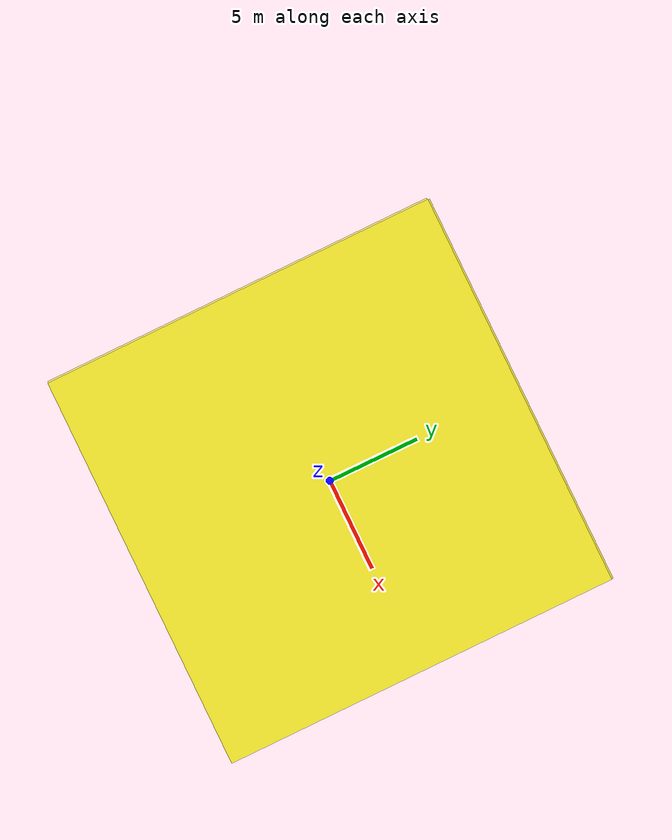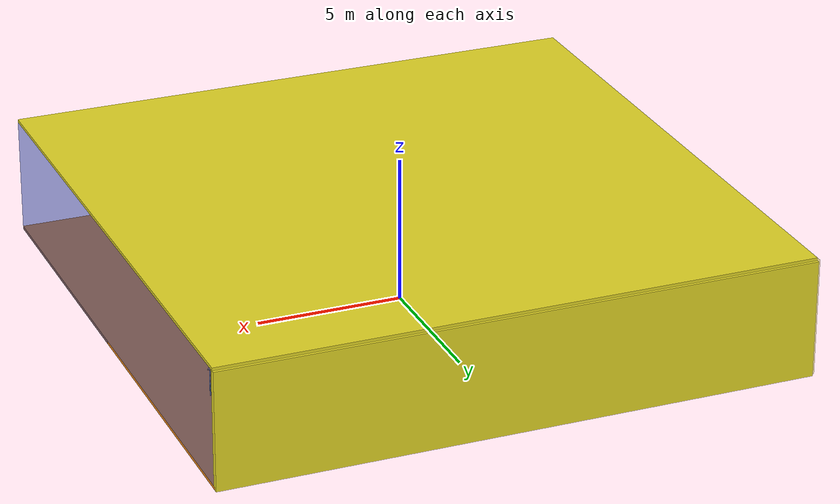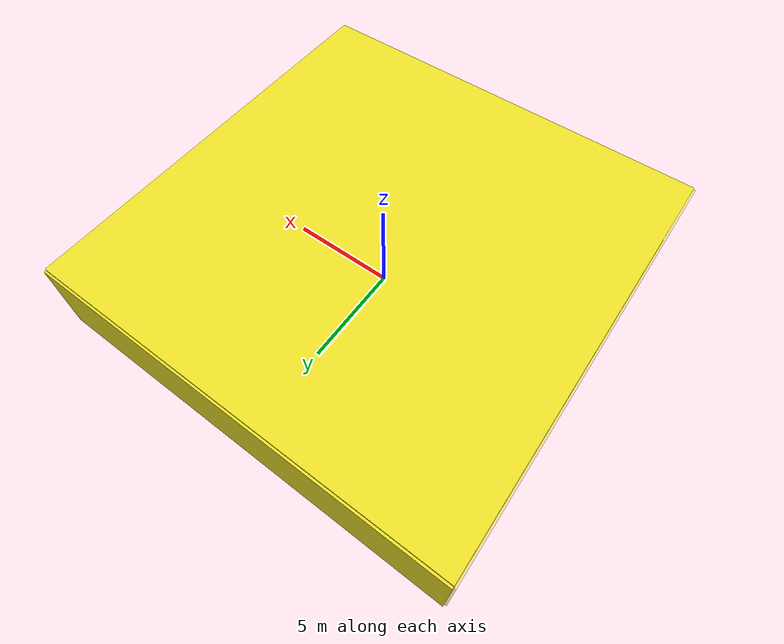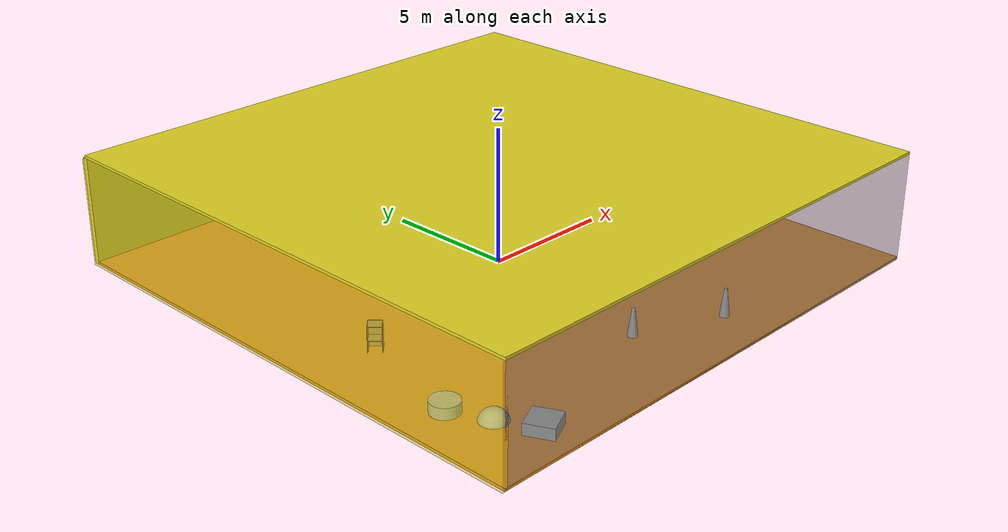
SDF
<sdf version="1.4">
 <world name="default">
  <physics type="ode">
   <max_step_size>0.001</max_step_size>
   <real_time_factor>1</real_time_factor>
   <real_time_update_rate>1000</real_time_update_rate>
   <gravity>0 0 -9.8</gravity>
  </physics>
  <scene><ambient>0.4 0.4 0.4 1</ambient><background>0.7 0.7 0.7 1</background><shadows>1</shadows></scene>
  <model name="Surrounding">
   <static>1</static>
   <link name="Ceiling">
    <collision name="Ceiling_Collision"><geometry><box><size>20 20 0.1</size></box></geometry></collision>
    <visual name="Ceiling_Visual">
     <geometry><box><size>20 20 0.1</size></box></geometry>
     <material>
      <script><uri>file://media/materials/scripts/gazebo.material</uri><name>Gazebo/Yellow</name></script>
     </material>
    </visual>
    <pose>0 0 4.05 0 0 0</pose>
   </link>
   <link name="Wall_South">
    <collision name="Wall_South_Collision">
     <geometry><box><size>20 0 4</size></box></geometry>
     <pose>0 0 2 0 -0 0</pose>
    </collision>
    <visual name="Wall_South_Visual">
     <pose>0 0 2 0 -0 0</pose>
     <geometry><box><size>20 0 4</size></box></geometry>
     <material>
      <script><uri>file://media/materials/scripts/gazebo.material</uri><name>Gazebo/GreyTransparent</name></script>
     </material>
    </visual>
    <velocity_decay><linear>0</linear><angular>0</angular></velocity_decay>
    <pose>0 -10 0 0 -0 0</pose>
   </link>
   <link name="Wall_East">
    <collision name="Wall_21_Collision">
     <geometry><box><size>20 0 4</size></box></geometry>
     <pose>0 0 2 0 -0 0</pose>
    </collision>
    <visual name="Wall_21_Visual">
     <pose>0 0 2 0 -0 0</pose>
     <geometry><box><size>20 0 4</size></box></geometry>
     <material>
      <script><uri>file://media/materials/scripts/gazebo.material</uri><name>Gazebo/BlueTransparent</name></script>
     </material>
    </visual>
    <velocity_decay><linear>0</linear><angular>0</angular></velocity_decay>
    <pose>10 0 0 0 -0 1.5708</pose>
   </link>
   <link name="Wall_North">
    <collision name="Wall_22_Collision">
     <geometry><box><size>20 0.2 4</size></box></geometry>
     <pose>0 0 2 0 -0 0</pose>
    </collision>
    <visual name="Wall_22_Visual">
     <pose>0 0 2 0 -0 0</pose>
     <geometry><box><size>20 0.2 4</size></box></geometry>
     <material>
      <script><uri>file://media/materials/scripts/gazebo.material</uri><name>Gazebo/YellowGlow</name></script>
     </material>
    </visual>
    <velocity_decay><linear>0</linear><angular>0</angular></velocity_decay>
    <pose>0 10 0 0 -0 0</pose>
   </link>
   <link name="Wall_West">
    <collision name="Wall_23_Collision">
     <geometry><box><size>20 0.2 4</size></box></geometry>
     <pose>0 0 2 0 -0 0</pose>
    </collision>
    <visual name="Wall_23_Visual">
     <pose>0 0 2 0 -0 0</pose>
     <geometry><box><size>20 0.2 4</size></box></geometry>
     <material>
      <script>
       <uri>file://media/materials/scripts/gazebo.material</uri>
       <name>Gazebo/YellowTransparent</name>
      </script>
     </material>
    </visual>
    <velocity_decay><linear>0</linear><angular>0</angular></velocity_decay>
    <pose>-10 0 0 0 0 -1.5708</pose>
   </link>
   <link name="Ground_link">
    <collision name="collision">
     <pose>0 0 .05 0 -0 0</pose>
     <geometry><box><size>20 20 0.1</size></box></geometry>
    </collision>
    <visual name="visual">
     <pose>0 0 .05 0 -0 0</pose>
     <geometry><box><size>20 20 0.1</size></box></geometry>
     <material>
      <script><uri>file://media/materials/scripts/gazebo.material</uri><name>Gazebo/Orange</name></script>
     </material>
    </visual>
   </link>
   <static>1</static>
  </model>
  <spherical_coordinates>
   <surface_model>EARTH_WGS84</surface_model>
   <latitude_deg>0</latitude_deg>
   <longitude_deg>0</longitude_deg>
   <elevation>0</elevation>
   <heading_deg>0</heading_deg>
  </spherical_coordinates>
  <light name="lightball_0" type="diffuse">
   <diffuse>0.8 0.8 0.8 1</diffuse>
   <specular>0.2 0.2 0.2 1</specular>
   <attenuation>
    <range>100</range>
    <constant>0.7</constant>
    <linear>0.01</linear>
    <quadratic>0.001</quadratic>
   </attenuation>
   <direction>-0.5 0.1 -0.9</direction>
   <pose>-9.69614397862 8.87120471757 3.57414639095 0 0 0</pose>
  </light>
  <light name="lightball_1" type="diffuse">
   <diffuse>0.8 0.8 0.8 1</diffuse>
   <specular>0.2 0.2 0.2 1</specular>
   <attenuation>
    <range>100</range>
    <constant>0.7</constant>
    <linear>0.01</linear>
    <quadratic>0.001</quadratic>
   </attenuation>
   <direction>-0.5 0.1 -0.9</direction>
   <pose>1.91001062161 -5.40248632587 3.52806593817 0 0 0</pose>
  </light>
  <light name="lightball_2" type="diffuse">
   <diffuse>0.8 0.8 0.8 1</diffuse>
   <specular>0.2 0.2 0.2 1</specular>
   <attenuation>
    <range>100</range>
    <constant>0.7</constant>
    <linear>0.01</linear>
    <quadratic>0.001</quadratic>
   </attenuation>
   <direction>-0.5 0.1 -0.9</direction>
   <pose>4.03476201947 -6.84363488953 1.07422883806 0 0 0</pose>
  </light>
  <light name="lightball_3" type="diffuse">
   <diffuse>0.8 0.8 0.8 1</diffuse>
   <specular>0.2 0.2 0.2 1</specular>
   <attenuation>
    <range>100</range>
    <constant>0.7</constant>
    <linear>0.01</linear>
    <quadratic>0.001</quadratic>
   </attenuation>
   <direction>-0.5 0.1 -0.9</direction>
   <pose>-1.7390261786 -4.06736217318 0.559035623125 0 0 0</pose>
  </light>
  <light name="lightball_4" type="diffuse">
   <diffuse>0.8 0.8 0.8 1</diffuse>
   <specular>0.2 0.2 0.2 1</specular>
   <attenuation>
    <range>100</range>
    <constant>0.7</constant>
    <linear>0.01</linear>
    <quadratic>0.001</quadratic>
   </attenuation>
   <direction>-0.5 0.1 -0.9</direction>
   <pose>-4.08869909798 9.06900241549 0.89616762994 0 0 0</pose>
  </light>
  <include>
   <uri>model://textured_shapes</uri>
   <pose>-7.76170042801 -7.38363328539 0 0 0 0.446307855768</pose>
  </include>
  <include><uri>model://cabinet</uri><pose>-7.37711949 -1.82546905169 0 0 0 0.774366048474</pose></include>
  <include><uri>model://cabinet</uri><pose>-4.47745829375 7.94175539121 0 0 0 2.70525998626</pose></include>
  <include>
   <uri>model://construction_cone</uri>
   <pose>-1.06181843447 -6.99969706124 0 0 0 1.27228378859</pose>
  </include>
  <include>
   <uri>model://construction_cone</uri>
   <pose>2.09604804762 -8.27012724739 0 0 0 1.85199801069</pose>
  </include>
  <include><uri>model://table</uri><pose>7.3963582172 4.47423543586 0 0 0 2.47104087171</pose></include>
 </world>
</sdf>

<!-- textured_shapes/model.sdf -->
<sdf version="1.6">
  <model name="textured_shapes">
    <pose>0 0 0.5 0 0 0</pose>
    <link name="box">
      <pose>0 -1.5 0 0 0 0</pose>
      <collision name="collision">
        <geometry>
          <box>
            <size>1 1 1</size>
          </box>
        </geometry>
      </collision>
      <visual name="visual">
        <geometry>
          <box>
            <size>1 1 1</size>
          </box>
        </geometry>
        <material>
          <script>
            <uri>model://../model_source/models/textured_shapes/materials/scripts</uri>
            <uri>model://../model_source/models/textured_shapes/materials/textures</uri>
            <name>TexturedShape/Squares</name>
          </script>
        </material>
      </visual>
    </link>
    <link name="sphere">
      <collision name="collision">
        <geometry>
          <sphere>
            <radius>0.5</radius>
          </sphere>
        </geometry>
      </collision>
      <visual name="visual">
        <geometry>
          <sphere>
            <radius>0.5</radius>
          </sphere>
        </geometry>
        <material>
          <script>
            <uri>model://../model_source/models/textured_shapes/materials/scripts</uri>
            <uri>model://../model_source/models/textured_shapes/materials/textures</uri>
            <name>TexturedShape/Squares</name>
          </script>
        </material>
      </visual>
    </link>
    <link name="cylinder">
      <pose>0 1.5 0 0 0 0</pose>
      <collision name="collision">
        <geometry>
          <cylinder>
            <radius>0.5</radius>
            <length>1</length>
          </cylinder>
        </geometry>
      </collision>
      <visual name="visual">
        <geometry>
          <cylinder>
            <radius>0.5</radius>
            <length>1</length>
          </cylinder>
        </geometry>
        <material>
          <script>
            <uri>model://../model_source/models/textured_shapes/materials/scripts</uri>
            <uri>model://../model_source/models/textured_shapes/materials/textures</uri>
            <name>TexturedShape/Squares</name>
          </script>
        </material>
      </visual>
    </link>
  </model>
</sdf>

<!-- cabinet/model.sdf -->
<sdf version="1.5">
  <model name="cabinet">
    <static>true</static>
    <link name="cabinet_bottom_plate">
      <inertial>
        <pose>0 0 -1 0 0 0</pose>
        <inertia>
          <ixx>2.050000</ixx>
          <ixy>0</ixy>
          <ixz>0</ixz>
          <iyy>2.050000</iyy>
          <iyz>0</iyz>
          <izz>2.050000</izz>
        </inertia>
        <mass>25.000000</mass>
      </inertial>
      <collision name="cabinet_bottom_plate_geom">
        <pose>0 0 0.010000 0 0 0</pose>
        <geometry>
          <box>
            <size>0.450000 0.450000 0.020000</size>
          </box>
        </geometry>
      </collision>
      <visual name="cabinet_bottom_plate_geom_visual">
        <pose>0 0 0.010000 0 0 0</pose>
        <geometry>
          <box>
            <size>0.450000 0.450000 0.020000</size>
          </box>
        </geometry>
        <material>
          <script>
            <uri>model://media/materials/scripts/gazebo.material</uri>
            <name>Gazebo/Wood</name>
          </script>
        </material>
      </visual>
      <collision name="cabinet_bottom_plate_geom_cabinet_back_plate">
        <pose>0.235000 0 0.510000 0 0 0</pose>
        <geometry>
          <box>
            <size>0.020000 0.450000 1.020000</size>
          </box>
        </geometry>
      </collision>
      <visual name="cabinet_bottom_plate_geom_cabinet_back_plate_visual">
        <pose>0.235000 0 0.510000 0 0 0</pose>
        <geometry>
          <box>
            <size>0.020000 0.450000 1.020000</size>
          </box>
        </geometry>
        <material>
          <script>
            <uri>model://media/materials/scripts/gazebo.material</uri>
            <name>Gazebo/Wood</name>
          </script>
        </material>
      </visual>
      <collision name="cabinet_bottom_plate_geom_cabinet_left_plate">
        <pose>0 0.235000 0.510000 0 0 0</pose>
        <geometry>
          <box>
            <size>0.450000 0.020000 1.020000</size>
          </box>
        </geometry>
      </collision>
      <visual name="cabinet_bottom_plate_geom_cabinet_left_plate_visual">
        <pose>0 0.235000 0.510000 0 0 0</pose>
        <geometry>
          <box>
            <size>0.450000 0.020000 1.020000</size>
          </box>
        </geometry>
        <material>
          <script>
            <uri>model://media/materials/scripts/gazebo.material</uri>
            <name>Gazebo/Wood</name>
          </script>
        </material>
      </visual>
      <collision name="cabinet_bottom_plate_geom_cabinet_middle_plate">
        <pose>0 0 0.510000 0 0 0</pose>
        <geometry>
          <box>
            <size>0.450000 0.450000 0.020000</size>
          </box>
        </geometry>
      </collision>
      <visual name="cabinet_bottom_plate_geom_cabinet_middle_plate_visual">
        <pose>0 0 0.510000 0 0 0</pose>
        <geometry>
          <box>
            <size>0.450000 0.450000 0.020000</size>
          </box>
        </geometry>
        <material>
          <script>
            <uri>model://media/materials/scripts/gazebo.material</uri>
            <name>Gazebo/Wood</name>
          </script>
        </material>
      </visual>
      <collision name="cabinet_bottom_plate_geom_cabinet_right_plate">
        <pose>0 -0.235000 0.510000 0 0 0</pose>
        <geometry>
          <box>
            <size>0.450000 0.020000 1.020000</size>
          </box>
        </geometry>
      </collision>
      <visual name="cabinet_bottom_plate_geom_cabinet_right_plate_visual">
        <pose>0 -0.235000 0.510000 0 0 0</pose>
        <geometry>
          <box>
            <size>0.450000 0.020000 1.020000</size>
          </box>
        </geometry>
        <material>
          <script>
            <uri>model://media/materials/scripts/gazebo.material</uri>
            <name>Gazebo/Wood</name>
          </script>
        </material>
      </visual>
      <collision name="cabinet_bottom_plate_geom_cabinet_top_plate">
        <pose>0 0 1.010000 0 0 0</pose>
        <geometry>
          <box>
            <size>0.450000 0.450000 0.020000</size>
          </box>
        </geometry>
      </collision>
      <visual name="cabinet_bottom_plate_geom_cabinet_top_plate_visual">
        <pose>0 0 1.010000 0 0 0</pose>
        <geometry>
          <box>
            <size>0.450000 0.450000 0.020000</size>
          </box>
        </geometry>
        <material>
          <script>
            <uri>model://media/materials/scripts/gazebo.material</uri>
            <name>Gazebo/Wood</name>
          </script>
        </material>
      </visual>
    </link>
  </model>
</sdf>

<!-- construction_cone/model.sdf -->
<sdf version="1.5">
  <model name="Construction Cone">
    <link name="link">
      <collision name="collision">
        <geometry>
          <mesh>
            <scale>10 10 10</scale>
            <uri>file://isr-testbed/construction_cone/meshes/construction_cone.dae</uri>
          </mesh>
        </geometry>
      </collision>
      <visual name="visual">
        <geometry>
          <mesh>
            <scale>10 10 10</scale>
            <uri>file://isr-testbed/construction_cone/meshes/construction_cone.dae</uri>
          </mesh>
        </geometry>
      </visual>
    </link>
  </model>
</sdf>

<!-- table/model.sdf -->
<sdf version="1.5">
  <model name="table">
    <static>true</static>
    <link name="link">
      <collision name="surface">
        <pose>0 0 1.0 0 0 0</pose>
        <geometry>
          <box>
            <size>1.5 0.8 0.03</size>
          </box>
        </geometry>
        <surface>
          <friction>
            <ode>
              <mu>0.6</mu>
              <mu2>0.6</mu2>
            </ode>
          </friction>
        </surface>
      </collision>
      <visual name="visual1">
        <pose>0 0 1.0 0 0 0</pose>
        <geometry>
          <box>
            <size>1.5 0.8 0.03</size>
          </box>
        </geometry>
        <material>
          <script>
            <uri>model://media/materials/scripts/gazebo.material</uri>
            <name>Gazebo/Wood</name>
          </script>
        </material>
      </visual>
      <collision name="front_left_leg">
        <pose>0.68 0.38 0.5 0 0 0</pose>
        <geometry>
          <cylinder>
            <radius>0.02</radius>
            <length>1.0</length>
          </cylinder>
        </geometry>
      </collision>
      <visual name="front_left_leg">
        <pose>0.68 0.38 0.5 0 0 0</pose>
        <geometry>
          <cylinder>
            <radius>0.02</radius>
            <length>1.0</length>
          </cylinder>
        </geometry>
        <material>
          <script>
            <uri>model://media/materials/scripts/gazebo.material</uri>
            <name>Gazebo/Grey</name>
          </script>
        </material>
      </visual>
      <collision name="front_right_leg">
        <pose>0.68 -0.38 0.5 0 0 0</pose>
        <geometry>
          <cylinder>
            <radius>0.02</radius>
            <length>1.0</length>
          </cylinder>
        </geometry>
      </collision>
      <visual name="front_right_leg">
        <pose>0.68 -0.38 0.5 0 0 0</pose>
        <geometry>
          <cylinder>
            <radius>0.02</radius>
            <length>1.0</length>
          </cylinder>
        </geometry>
        <material>
          <script>
            <uri>model://media/materials/scripts/gazebo.material</uri>
            <name>Gazebo/Grey</name>
          </script>
        </material>
      </visual>
      <collision name="back_right_leg">
        <pose>-0.68 -0.38 0.5 0 0 0</pose>
        <geometry>
          <cylinder>
            <radius>0.02</radius>
            <length>1.0</length>
          </cylinder>
        </geometry>
      </collision>
      <visual name="back_right_leg">
        <pose>-0.68 -0.38 0.5 0 0 0</pose>
        <geometry>
          <cylinder>
            <radius>0.02</radius>
            <length>1.0</length>
          </cylinder>
        </geometry>
        <material>
          <script>
            <uri>model://media/materials/scripts/gazebo.material</uri>
            <name>Gazebo/Grey</name>
          </script>
        </material>
      </visual>
      <collision name="back_left_leg">
        <pose>-0.68 0.38 0.5 0 0 0</pose>
        <geometry>
          <cylinder>
            <radius>0.02</radius>
            <length>1.0</length>
          </cylinder>
        </geometry>
      </collision>
      <visual name="back_left_leg">
        <pose>-0.68 0.38 0.5 0 0 0</pose>
        <geometry>
          <cylinder>
            <radius>0.02</radius>
            <length>1.0</length>
          </cylinder>
        </geometry>
        <material>
          <script>
            <uri>model://media/materials/scripts/gazebo.material</uri>
            <name>Gazebo/Grey</name>
          </script>
        </material>
      </visual>
    </link>
  </model>
</sdf>
